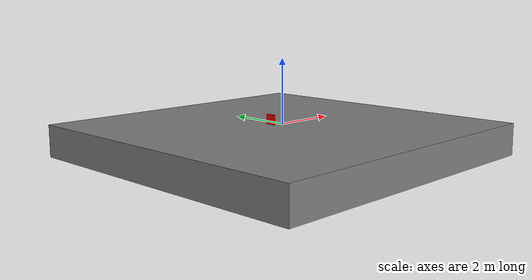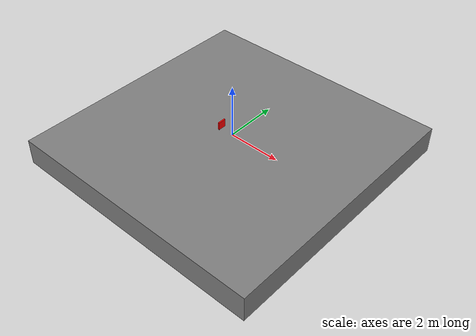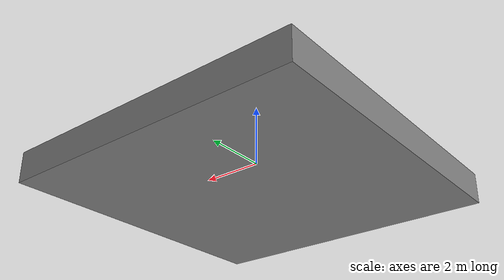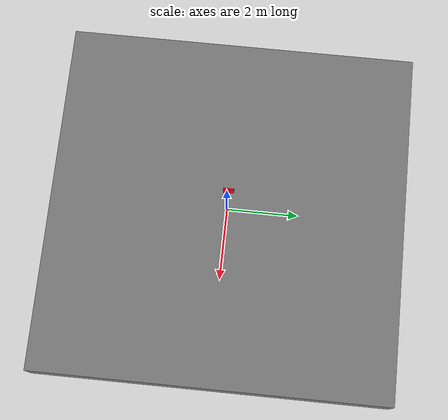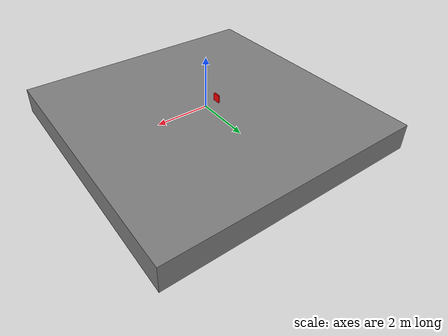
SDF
<sdf version="1.7">
  <model name="conveyor_belt_tool_model">

    <link name="floor">
      <inertial>
        <mass>1.0</mass>
        <inertia>
          <ixx>1</ixx>
          <iyy>1</iyy>
          <izz>1</izz>
          <ixy>0</ixy>
          <ixz>0</ixz>
          <iyz>0</iyz>
        </inertia>
      </inertial>
      <pose>0 0 -0.5 0 0 0  </pose>
      <visual name="floor_visual">
        <geometry>
          <box>
            <size>10 10 1</size>
          </box>
        </geometry>
        <material>
          <ambient>0.5 0.5 0.5 1.0</ambient> <!-- Gray color -->
          <diffuse>0.5 0.5 0.5 1.0</diffuse>
        </material>
      </visual>
      <collision name="floor_collision">
        <geometry>
          <box>
            <size>10 10 1</size>
          </box>
        </geometry>
        <drake:proximity_properties>
          <drake:compliant_hydroelastic/>
          <drake:hydroelastic_modulus>1e8</drake:hydroelastic_modulus>
          <drake:mesh_resolution_hint>0.01</drake:mesh_resolution_hint>
          <drake:mu_dynamic>0.5</drake:mu_dynamic>
          <drake:mu_static>0.6</drake:mu_static>
          <drake:hunt_crossley_dissipation>5</drake:hunt_crossley_dissipation>
        </drake:proximity_properties>
      </collision>
    </link>
    <joint name="fixed_floor" type="fixed">
      <parent>world</parent>
      <child>floor</child>
    </joint>

    <link name="base_link">
      <inertial>
        <mass>0.001</mass>
        <inertia>
          <ixx>0.000001</ixx>
          <iyy>0.000001</iyy>
          <izz>0.000001</izz>
          <ixy>0</ixy>
          <ixz>0</ixz>
          <iyz>0</iyz>
        </inertia>
      </inertial>
    </link>
    <link name="slider_x">
      <inertial>
        <mass>0.001</mass>
        <inertia>
          <ixx>0.000001</ixx>
          <iyy>0.000001</iyy>
          <izz>0.000001</izz>
          <ixy>0</ixy>
          <ixz>0</ixz>
          <iyz>0</iyz>
        </inertia>
      </inertial>
    </link>
    <link name="hinge_x">
      <inertial>
        <mass>0.001</mass>
        <inertia>
          <ixx>0.000001</ixx>
          <iyy>0.000001</iyy>
          <izz>0.000001</izz>
          <ixy>0</ixy>
          <ixz>0</ixz>
          <iyz>0</iyz>
        </inertia>
      </inertial>
    </link>
    <link name="slider_y">
      <inertial>
        <mass>0.001</mass>
        <inertia>
          <ixx>0.000001</ixx>
          <iyy>0.000001</iyy>
          <izz>0.000001</izz>
          <ixy>0</ixy>
          <ixz>0</ixz>
          <iyz>0</iyz>
        </inertia>
      </inertial>
    </link>
    <link name="hinge_y">
      <inertial>
        <mass>0.001</mass>
        <inertia>
          <ixx>0.000001</ixx>
          <iyy>0.000001</iyy>
          <izz>0.000001</izz>
          <ixy>0</ixy>
          <ixz>0</ixz>
          <iyz>0</iyz>
        </inertia>
      </inertial>
    </link>
    <link name="slider_z">
      <inertial>
        <mass>0.001</mass>
        <inertia>
          <ixx>0.000001</ixx>
          <iyy>0.000001</iyy>
          <izz>0.000001</izz>
          <ixy>0</ixy>
          <ixz>0</ixz>
          <iyz>0</iyz>
        </inertia>
      </inertial>
    </link>
    <link name="conveyor_belt_tool">
      <inertial>
        <mass>1</mass>
        <inertia>
          <ixx>0.0077083</ixx>
          <iyy>0.0077083</iyy>
          <izz>0.015</izz>
          <ixy>0</ixy>
          <ixz>0</ixz>
          <iyz>0</iyz>
        </inertia>
      </inertial>
      <pose> -0.5 0 0.2 0 1.57 0 </pose>
      <visual name="conveyor_belt_tool_visual">
        <geometry>
          <box>
            <size> 0.3 0.3 0.05 </size>
          </box>
        </geometry>
        <material>
          <ambient> 1 0 0 1 </ambient>
          <diffuse> 1 0 0 1 </diffuse>
        </material>
      </visual>
      <collision name="conveyor_belt_tool_collision">
        <geometry>
          <box>
            <size> 0.3 0.3 0.05 </size>
          </box>
        </geometry>
        <drake:proximity_properties>
          <drake:compliant_hydroelastic/>
          <drake:hydroelastic_modulus> 1e8 </drake:hydroelastic_modulus>
          <drake:mu_dynamic> 0.8 </drake:mu_dynamic>
          <drake:mu_static> 1.0 </drake:mu_static>
          <drake:hunt_crossley_dissipation>1</drake:hunt_crossley_dissipation>
          <drake:point_contact_stiffness>1e9</drake:point_contact_stiffness>
          <drake:surface_speed>0.5</drake:surface_speed>
          <drake:surface_velocity_normal>0 1 0</drake:surface_velocity_normal>
        </drake:proximity_properties>
      </collision>
    </link>

    <joint name="base_fixed" type="fixed">
      <parent>world</parent>
      <child>base_link</child>
    </joint>

    <joint name="prismatic_z" type="prismatic">
      <parent>base_link</parent>
      <child>slider_z</child>
      <pose>0 0 0 0 0 0</pose>
      <axis>
        <xyz>0 0 1</xyz>
        <limit>
          <effort>20</effort>
          <lower>-5</lower>
          <upper>5</upper>
        </limit>
      </axis>
    </joint>

    <joint name="prismatic_x" type="prismatic">
      <parent>slider_z</parent>
      <child>slider_x</child>
      <pose>0 0 0 0 0 0</pose>
      <axis>
        <xyz>1 0 0</xyz>
        <limit>
          <effort>20</effort>
          <lower>-5</lower>
          <upper>5</upper>
        </limit>
      </axis>
    </joint>

    <joint name="revolute_x" type="revolute">
      <parent>slider_x</parent>
      <child>hinge_x</child>
      <pose>0 0 0 0 0 0</pose>
      <axis>
        <xyz>1 0 0</xyz>
        <limit>
          <effort>20</effort>
          <lower>-5</lower>
          <upper>5</upper>
        </limit>
      </axis>
    </joint>

    <joint name="prismatic_y" type="prismatic">
      <parent>hinge_x</parent>
      <child>slider_y</child>
      <pose>0 0 0 0 0 0</pose>
      <axis>
        <xyz>0 1 0</xyz>
        <limit>
          <effort>20</effort>
          <lower>-5</lower>
          <upper>5</upper>
        </limit>
      </axis>
    </joint>

    <joint name="revolute_y" type="revolute">
      <parent>slider_y</parent>
      <child>hinge_y</child>
      <pose>0 0 0 0 0 0</pose>
      <axis>
        <xyz>0 1 0</xyz>
        <limit>
          <effort>20</effort>
          <lower>-5</lower>
          <upper>5</upper>
        </limit>
      </axis>
    </joint>

    <joint name="fixated" type="fixed">
      <parent>hinge_y</parent>
      <child>conveyor_belt_tool</child>
    </joint>

  </model>
</sdf>
